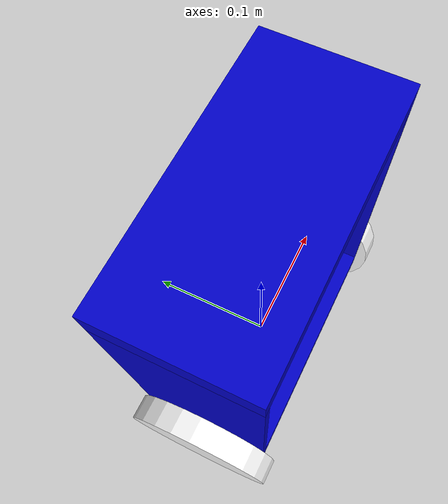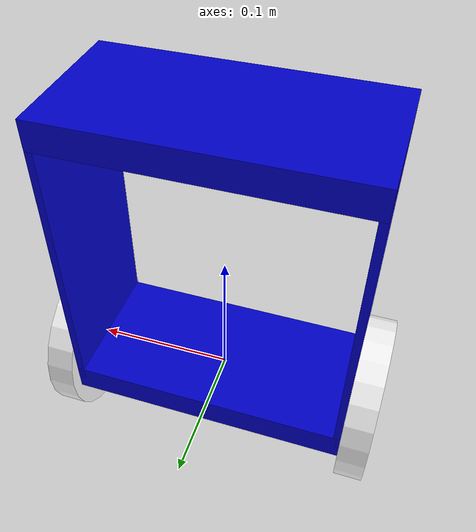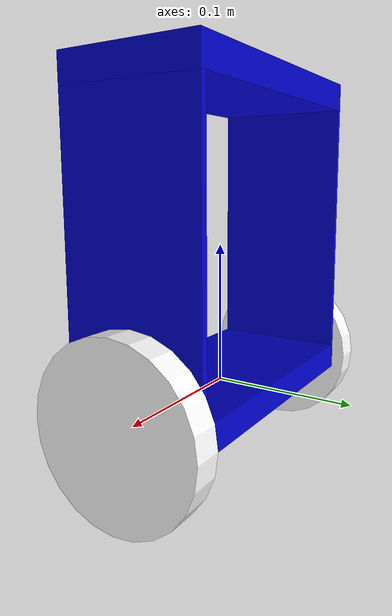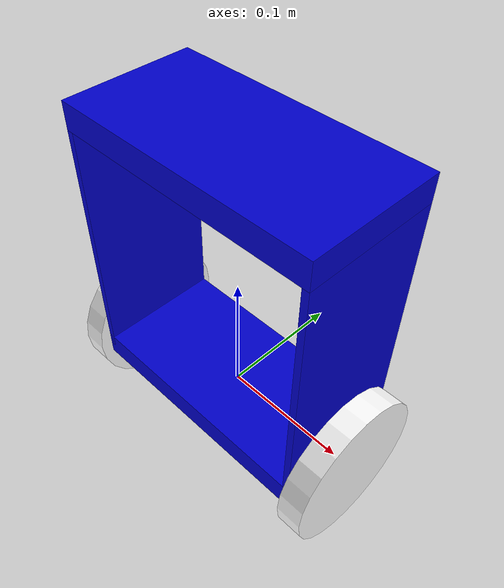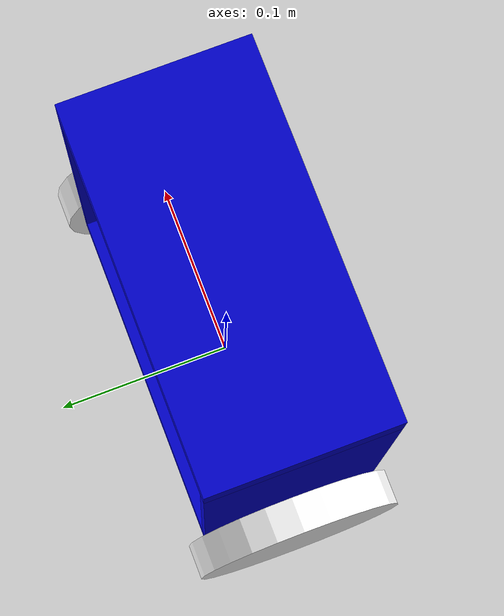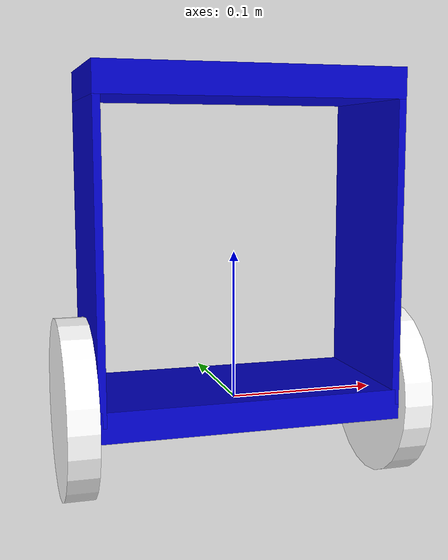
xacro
<?xml version="1.0"?>
<robot name="robot" xmlns:xacro="http://www.ros.org/wiki/xacro" >

 <material name="blue">
 	<color rgba="0 0 0.8 1"/>
 </material>

 <material name="white">
	 <color rgba="1 1 1 1"/>
 </material>

 <xacro:property name="m" value="0.3" />
 <xacro:property name="l1" value="0.2" />
 <xacro:property name="b1" value="0.1" />
 <xacro:property name="h1" value="0.02" />

 <xacro:property name="b2" value="0.2" />
 <xacro:property name="h2" value="0.005" />

	<link name="chassis">
		<pose>0 0 0.1 0 0 0</pose>
		<visual>
			<origin rpy="0 0 0" xyz="0 0 0"/>
			<geometry>
					<box size="${l1} ${b1} ${h1}"/>
			</geometry>
			<material name="blue"/>
		</visual>

		<visual>
			<origin rpy="1.5707 0 1.5707" xyz="${l1/2 - h2/2} 0 ${b2/2}"/>
			<geometry>
					<box size="${b1} ${b2} ${h2}"/>
			</geometry>
			<material name="blue"/>
		</visual>

		<visual>
			<origin rpy="1.5707 0 1.5707" xyz="-${l1/2 - h2/2} 0 ${b2/2}"/>
			<geometry>
					<box size="${b1} ${b2} ${h2}"/>
			</geometry>
			<material name="blue"/>
		</visual>

		<visual>
			<origin rpy="0 0 0" xyz="0 0 ${b2+h1/2}"/>
			<geometry>
					<box size="${l1} ${b1} ${h1}"/>
			</geometry>
			<material name="blue"/>
		</visual>

		<collision name="collision_chassis">
			<geometry>
				<box size="${l1} ${b1} ${h1+b2+h1}"/>
			</geometry>
		</collision>

		<inertial>
			<mass value="${m}"/>
			<origin rpy="0 0 0" xyz="0 0 ${b2/2+h1}"/>
			<inertia ixx="${2*m*h1*b1/12.0}" ixy="0" ixz="0" iyy="${2*m*l1*h1/12.0}" iyz="0" izz="${2*m*l1*b1/12.0}"/>
		</inertial>
	</link>

	<!--    wheels     -->

 <xacro:property name="l3" value="0.02" />
 <xacro:property name="r3" value="0.06" />
 <xacro:property name="m3" value="0.05" />

	<link name="right_wheel">
		<visual>
			<origin rpy="0 1.5707 0" xyz="0 0 0"/>
			<geometry>
					<cylinder length="${l3}" radius="${r3}"/>
			</geometry>
			<material name="white"/>
		</visual>

		<collision name="collision_right_wheel">
			<origin rpy="0 1.5707 0" xyz="0 0 0"/>
			<geometry>
				<cylinder length="${l3}" radius="${r3}"/>
			</geometry>
		</collision>

		<inertial>
			<mass value="0.2"/>
				<origin rpy="0 1.5707 0" xyz="0 0 0"/>
			<inertia ixx="${m3*((3*r3*r3)+(l3*l3))/12.0}" ixy="0" ixz="0" iyy="${m3*((3*r3*r3)+(l3*l3))/12.0}" iyz="0" izz="${(m3*r3*r3)/2.0}"/>
		</inertial>
	</link>

	<joint name="joint_right_wheel_chassis" type="continuous">
		<origin rpy="0 0 0" xyz="${l1/2+l3/2} 0 0"/>
		<child link="right_wheel"/>
		<parent link="chassis"/>
		<axis xyz="1 0 0"/>
		<limit effort="10000" velocity="1000"/>
		<joint_properties damping="1.0" friction="1.0"/>
	</joint>

	<link name="left_wheel">
		<visual>
			<origin rpy="0 1.5707 0" xyz="0 0 0"/>
			<geometry>
					<cylinder length="${l3}" radius="${r3}"/>
			</geometry>
			<material name="white"/>
		</visual>

		<collision name="collision_left_wheel">
			<origin rpy="0 1.5707 0" xyz="0 0 0"/>
			<geometry>
				<cylinder length="${l3}" radius="${r3}"/>
			</geometry>
		</collision>

		<inertial>
			<mass value="0.2"/>
			<origin rpy="0 1.5707 0" xyz="0 0 0"/>
			<inertia ixx="${m3*((3*r3*r3)+(l3*l3))/12.0}" ixy="0" ixz="0" iyy="${m3*((3*r3*r3)+(l3*l3))/12.0}" iyz="0" izz="${(m3*r3*r3)/2.0}"/>
		</inertial>
	</link>

	<joint name="joint_left_wheel_chassis" type="continuous">
		<origin rpy="0 0 0" xyz="-${l1/2+l3/2} 0 0"/>
		<child link="left_wheel"/>
		<parent link="chassis"/>
		<axis xyz="1 0 0"/>
		<limit effort="10000" velocity="1000"/>
		<joint_properties damping="1.0" friction="1.0"/>
	</joint>
</robot>
